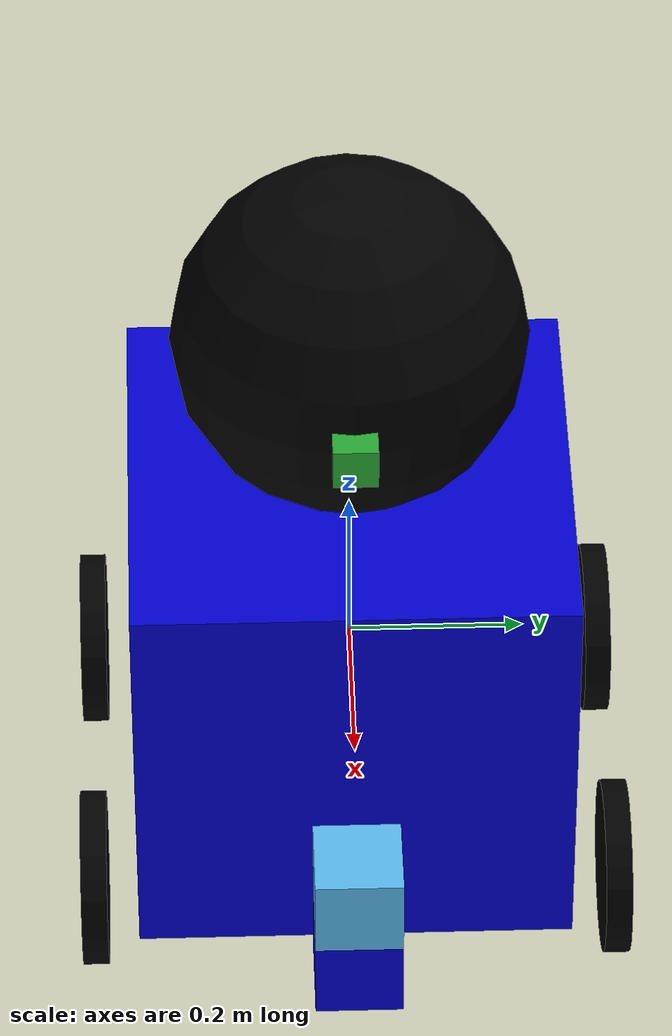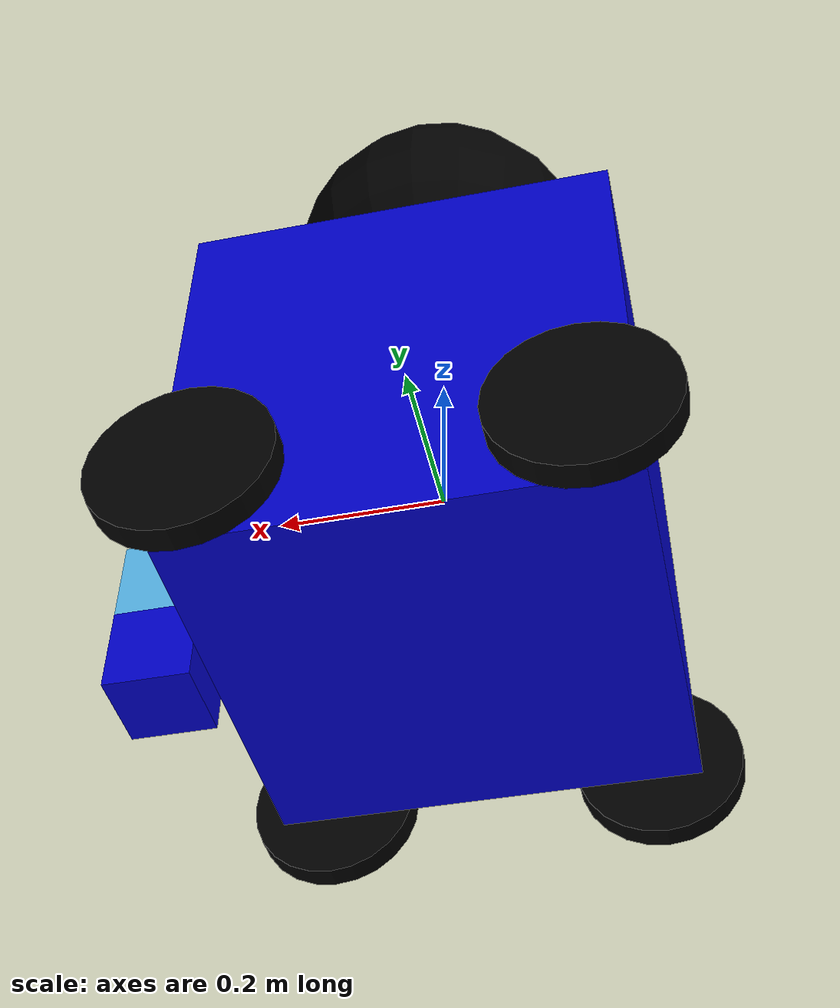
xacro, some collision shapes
<?xml version='1.0'?>

<robot name="my_droid" xmlns:xacro="http://www.ros.org/wiki/xacro">

  <xacro:include filename="$(find my_droid)/urdf/udacity_bot.gazebo" />

  <link name="robot_footprint"></link>

  <joint name="robot_footprint_joint" type="fixed">
    <origin xyz="0 0 0" rpy="0 0 0" />
    <parent link="robot_footprint"/>
    <child link="body" />
  </joint>

  <material name="blue">
    <color rgba="0 0 0.8 1"/>
    </material>

  <material name="black">
    <color rgba="0 0 0 1"/>
    </material>

  <material name="white">
    <color rgba="1 1 1 1"/>
    </material>

  <link name='body'>
    <pose>0 0 -0.25 0 0 0</pose>
    <inertial>
      <mass value="10.0"/>
      <origin xyz="0 0 0" rpy=" 0 0 0"/>
      <inertia
          ixx="0.5" ixy="0" ixz="0"
          iyy="0.5" iyz="0"
          izz="0.5"
               />
    </inertial>

    <collision name='body_collision'>
      <origin xyz="0 0 0" rpy=" 0 0 0"/>
      <geometry>
        <box size="0.5 0.5 0.5"/>
      </geometry>
    </collision>

    <visual name='body_visual'>
      <origin xyz="0 0 0" rpy=" 0 0 0"/>
      <geometry>
        <box size="0.5 0.5 0.5"/>
      </geometry>
      <material name="blue"/>
    </visual>

   </link>

<!--front wheels-->

    <link name='front_left_wheel'>
    <inertial>
      <mass value="5.0"/>
      <origin xyz="0 0 0" rpy="0 1.5707 1.5707"/>
      <inertia
          ixx="0.1" ixy="0" ixz="0"
          iyy="0.1" iyz="0"
          izz="0.1"
      />
    </inertial>

    <visual name='front_left_wheel_visual'>
     <origin xyz="0 0 0" rpy=" 0 1.5707 1.5707"/>
     <geometry>
      <cylinder length="0.03" radius="0.1"/>
     </geometry>
     <material name="black"/>
    </visual>

    <collision name='front_left_wheel_collision'>
     <origin xyz="0 0 0" rpy=" 0 1.5707 1.5707"/>
     <geometry>
       <cylinder length="0.03" radius="0.1"/>
     </geometry>
    </collision>
  </link>

  <joint type="continuous" name="front_left_wheel_hinge">
    <origin xyz="0.20 0.30 -0.198" rpy="0 0 0"/>
    <child link="front_left_wheel"/>
    <parent link="body"/>
    <axis xyz="0 1 0" rpy="0 0 0"/>
    <limit effort="10000" velocity="1000"/>
    <joint_properties damping="1.0" friction="1.0"/>
  </joint>

  <link name='front_right_wheel'>
    <inertial>
      <mass value="5.0"/>
      <origin xyz="0 0 0" rpy="0 1.5707 1.5707"/>
      <inertia
          ixx="0.1" ixy="0" ixz="0"
          iyy="0.1" iyz="0"
          izz="0.1"
      />
    </inertial>

    <visual name='front_right_wheel_visual'>
     <origin xyz="0 0 0" rpy=" 0 1.5707 1.5707"/>
     <geometry>
      <cylinder length="0.03" radius="0.1"/>
     </geometry>
     <material name="black"/>
    </visual>

    <collision name='front_right_wheel_collision'>
     <origin xyz="0 0 0" rpy=" 0 1.5707 1.5707"/>
     <geometry>
       <cylinder length="0.03" radius="0.1"/>
     </geometry>
    </collision>
  </link>

  <joint type="continuous" name="front_right_wheel_hinge">
    <origin xyz="0.20 -0.30 -0.198" rpy="0 0 0"/>
    <child link="front_right_wheel"/>
    <parent link="body"/>
    <axis xyz="0 -1 0" rpy="0 0 0"/>
    <limit effort="10000" velocity="1000"/>
    <joint_properties damping="1.0" friction="1.0"/>
  </joint>

<!--back wheels-->

  <link name='back_left_wheel'>
    <inertial>
      <mass value="5.0"/>
      <origin xyz="0 0 0" rpy="0 1.5707 1.5707"/>
      <inertia
          ixx="0.1" ixy="0" ixz="0"
          iyy="0.1" iyz="0"
          izz="0.1"
      />
    </inertial>

    <visual name='back_left_wheel_visual'>
     <origin xyz="0 0 0" rpy=" 0 1.5707 1.5707"/>
     <geometry>
      <cylinder length="0.03" radius="0.1"/>
     </geometry>
     <material name="black"/>
    </visual>

    <collision name='back_left_wheel_collision'>
     <origin xyz="0 0 0" rpy=" 0 1.5707 1.5707"/>
     <geometry>
       <cylinder length="0.03" radius="0.1"/>
     </geometry>
    </collision>
  </link>

  <joint type="continuous" name="back_left_wheel_hinge">
    <origin xyz="-0.20 0.30 -0.198" rpy="0 0 0"/>
    <child link="back_left_wheel"/>
    <parent link="body"/>
    <axis xyz="0 1 0" rpy="0 0 0"/>
    <limit effort="10000" velocity="1000"/>
    <joint_properties damping="1.0" friction="1.0"/>
  </joint>

  <link name='back_right_wheel'>
    <inertial>
      <mass value="5.0"/>
      <origin xyz="0 0 0" rpy="0 1.5707 1.5707"/>
      <inertia
          ixx="0.1" ixy="0" ixz="0"
          iyy="0.1" iyz="0"
          izz="0.1"
      />
    </inertial>

    <visual name='back_right_wheel_visual'>
     <origin xyz="0 0 0" rpy=" 0 1.5707 1.5707"/>
     <geometry>
      <cylinder length="0.03" radius="0.1"/>
     </geometry>
     <material name="black"/>
    </visual>

    <collision name='back_right_wheel_collision'>
     <origin xyz="0 0 0" rpy=" 0 1.5707 1.5707"/>
     <geometry>
       <cylinder length="0.03" radius="0.1"/>
     </geometry>
    </collision>
  </link>

  <joint type="continuous" name="back_right_wheel_hinge">
    <origin xyz="-0.20 -0.30 -0.198" rpy="0 0 0"/>
    <child link="back_right_wheel"/>
    <parent link="body"/>
    <axis xyz="0 -1  0" rpy="0 0 0"/>
    <limit effort="10000" velocity="1000"/>
    <joint_properties damping="1.0" friction="1.0"/>
  </joint>

<!--head-->

  <link name='head'>
    <inertial>
      <mass value="5.0"/>
      <origin xyz="0 0 0" rpy="0 0 0"/>
      <inertia
          ixx="1.0" ixy="0" ixz="0"
          iyy="1.0" iyz="0"
          izz="1.0"
               />
      </inertial>

      <collision name="head">
        <origin xyz="0 0 0" rpy="0 0 0"/>
        <geometry>
          <sphere radius="0.2"/>
        </geometry>
      </collision>

     <visual name='head_visual'>
     <origin xyz="0 0 0" rpy=" 0 0 0"/>
     <geometry>
          <sphere radius="0.2"/>
     </geometry>
     <material name="black"/>
    </visual>
   </link>

  <joint type="fixed" name="head_hinge">
    <origin xyz="0 0 0.45" rpy="0 0 0"/>
    <child link="head"/>
    <parent link="body"/>
    <axis xyz="0 0 1" rpy="0 0 0"/>
  </joint>

  <link name='camera'>
    <inertial>
      <mass value="0.1"/>
      <origin xyz="0 0 0" rpy="0 0 0"/>
      <inertia
          ixx="1e-6" ixy="0" ixz="0"
          iyy="1e-6" iyz="0"
          izz="1e-6"
      />
    </inertial>

    <visual name='camera_visual'>
     <origin xyz="0 0 0" rpy=" 0 0 0"/>
     <geometry>
      <box size="0.05 0.05 0.05"/>
     </geometry>
    </visual>

    <collision name='camera_collision'>
     <origin xyz="0 0 0" rpy=" 0 0 0"/>
     <geometry>
      <box size="0.05 0.05 0.05"/>
     </geometry>
    </collision>

  </link>

  <joint type="fixed" name="camera_joint">
    <origin xyz="0.2 0 0" rpy="0 0 0"/>
    <child link="camera"/>
    <parent link="head"/>
    <axis xyz="1 0 0" rpy="0 0 0"/>
  </joint>

  <link name='Hokuyo_base'>
    <inertial>
      <mass value="0.1"/>
      <origin xyz="0 0 0" rpy="0 0 0"/>
      <inertia
          ixx="1e-6" ixy="0" ixz="0"
          iyy="1e-6" iyz="0"
          izz="1e-6"
      />
    </inertial>

    <visual name='base_visual'>
     <origin xyz="0 0 0" rpy=" 0 0 0"/>
     <geometry>
      <box size="0.1 0.1 0.1"/>
     </geometry>
     <material name="blue"/>
    </visual>

    <collision name='hokuyo_collision'>
     <origin xyz="0 0 0" rpy=" 0 0 0"/>
     <geometry>
      <box size="0.1 0.1 0.1"/>
     </geometry>
    </collision>
   </link>

   <joint type="fixed" name="Base_joint">
    <origin xyz="0.32 0 -0.20" rpy="0 0 0"/>
    <child link="Hokuyo_base"/>
    <parent link="body"/>
    <axis xyz="1 0 0" rpy="0 0 0"/>
  </joint>

  <link name='hokuyo'>
    <inertial>
      <mass value="0.1"/>
      <origin xyz="0 0 0" rpy="0 0 0"/>
      <inertia
          ixx="1e-6" ixy="0" ixz="0"
          iyy="1e-6" iyz="0"
          izz="1e-6"
      />
    </inertial>

    <visual name='hokuyo_visual'>
     <origin xyz="0 0 0" rpy=" 0 0 0"/>
     <geometry>
      <mesh filename="package://my_droid/meshes/hokuyo.dae"/>
     </geometry>
    </visual>

    <collision name='hokuyo_collision'>
     <origin xyz="0 0 0" rpy=" 0 0 0"/>
     <geometry>
      <box size="0.1 0.1 0.1"/>
     </geometry>
    </collision>
  </link>

  <joint type="fixed" name="hokuyo_joint">
    <origin xyz="0 0 0.1" rpy="0 0 0"/>
    <child link="hokuyo"/>
    <parent link="Hokuyo_base"/>
    <axis xyz="0 0 1" rpy="0 0 0"/>
  </joint>

</robot>
